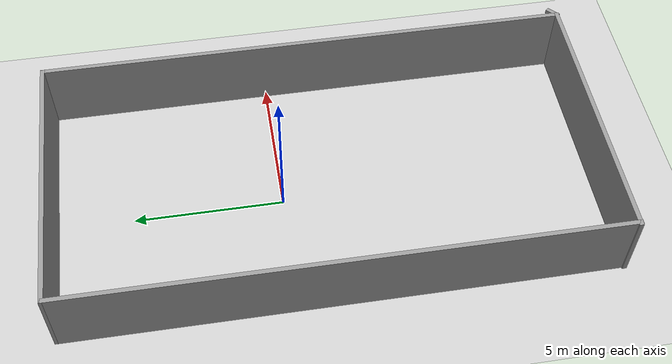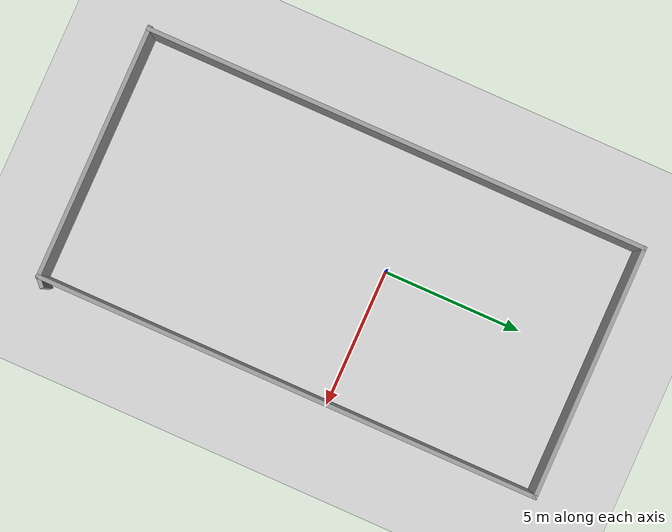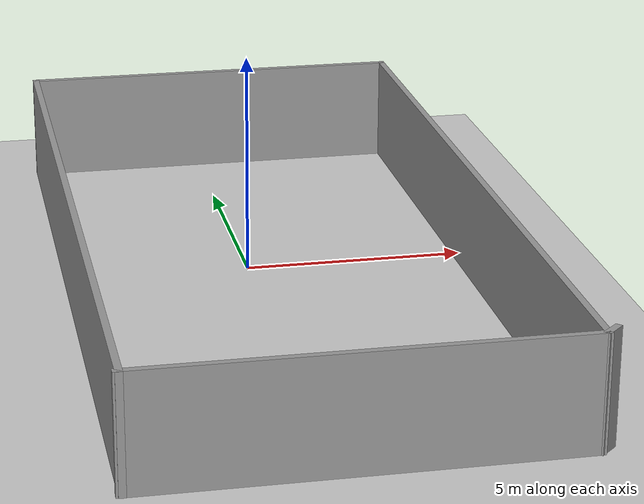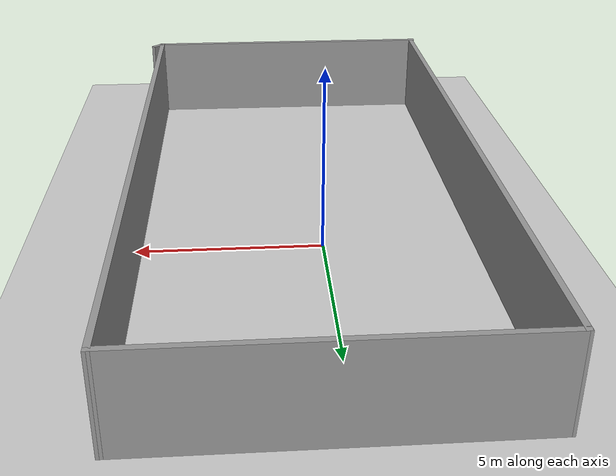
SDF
<sdf version="1.6">
 <world name="default">
  <light name="sun" type="directional">
   <pose>0 0 10 0 -0 0</pose>
   <diffuse>0.8 0.8 0.8 1</diffuse>
   <specular>0.2 0.2 0.2 1</specular>
   <attenuation>
    <range>1000</range>
    <constant>0.9</constant>
    <linear>0.01</linear>
    <quadratic>0.001</quadratic>
   </attenuation>
   <direction>-0.5 0.1 -0.9</direction>
  </light>
  <model name="ground_plane">
   <static>1</static>
   <link name="link">
    <collision name="collision">
     <geometry><plane><normal>0 0 1</normal><size>100 100</size></plane></geometry>
     <surface>
      <contact><collide_bitmask>65535</collide_bitmask></contact>
      <friction><ode><mu>100</mu><mu2>50</mu2></ode></friction>
     </surface>
    </collision>
    <visual name="visual">
     <cast_shadows>0</cast_shadows>
     <geometry><plane><normal>0 0 1</normal><size>100 100</size></plane></geometry>
     <material>
      <script><uri>file://media/materials/scripts/gazebo.material</uri><name>Gazebo/Grey</name></script>
     </material>
    </visual>
   </link>
  </model>
  <gravity>0 0 -9.8</gravity>
  <magnetic_field>6e-06 2.3e-05 -4.2e-05</magnetic_field>
  <atmosphere type="adiabatic"/>
  <physics name="default_physics" default="0" type="ode">
   <max_step_size>0.001</max_step_size>
   <real_time_factor>1</real_time_factor>
   <real_time_update_rate>1000</real_time_update_rate>
  </physics>
  <scene><ambient>0.4 0.4 0.4 1</ambient><background>0.7 0.7 0.7 1</background><shadows>1</shadows></scene>
  <spherical_coordinates>
   <surface_model>EARTH_WGS84</surface_model>
   <latitude_deg>0</latitude_deg>
   <longitude_deg>0</longitude_deg>
   <elevation>0</elevation>
   <heading_deg>0</heading_deg>
  </spherical_coordinates>
  <model name="big_rect">
   <pose>0.487787 -1.50097 0 0 -0 0</pose>
   <link name="Wall_1">
    <collision name="Wall_1_Collision">
     <geometry><box><size>18.25 0.15 2.5</size></box></geometry>
     <pose>0 0 1.25 0 -0 0</pose>
    </collision>
    <visual name="Wall_1_Visual">
     <pose>0 0 1.25 0 -0 0</pose>
     <geometry><box><size>18.25 0.15 2.5</size></box></geometry>
     <material>
      <script><uri>file://media/materials/scripts/gazebo.material</uri><name>Gazebo/Grey</name></script>
      <ambient>1 1 1 1</ambient>
     </material>
     <meta><layer>0</layer></meta>
    </visual>
    <pose>-4.64193 0.006233 0 0 -0 -1.5708</pose>
   </link>
   <link name="Wall_3">
    <collision name="Wall_3_Collision">
     <geometry><box><size>18.25 0.15 2.5</size></box></geometry>
     <pose>0 0 1.25 0 -0 0</pose>
    </collision>
    <visual name="Wall_3_Visual">
     <pose>0 0 1.25 0 -0 0</pose>
     <geometry><box><size>18.25 0.15 2.5</size></box></geometry>
     <material>
      <script><uri>file://media/materials/scripts/gazebo.material</uri><name>Gazebo/Grey</name></script>
      <ambient>1 1 1 1</ambient>
     </material>
     <meta><layer>0</layer></meta>
    </visual>
    <pose>4.41229 0.015462 0 0 -0 1.5708</pose>
   </link>
   <link name="Wall_6">
    <collision name="Wall_6_Collision">
     <geometry><box><size>9.20422 0.15 2.5</size></box></geometry>
     <pose>0 0 1.25 0 -0 0</pose>
    </collision>
    <visual name="Wall_6_Visual">
     <pose>0 0 1.25 0 -0 0</pose>
     <geometry><box><size>9.20422 0.15 2.5</size></box></geometry>
     <material>
      <script><uri>file://media/materials/scripts/gazebo.material</uri><name>Gazebo/Grey</name></script>
      <ambient>1 1 1 1</ambient>
     </material>
     <meta><layer>0</layer></meta>
    </visual>
    <pose>-0.114822 9.06085 0 0 -0 0.001019</pose>
   </link>
   <link name="Wall_8">
    <collision name="Wall_8_Collision">
     <geometry><box><size>0.484149 0.15 2.5</size></box></geometry>
     <pose>0 0 1.25 0 -0 0</pose>
    </collision>
    <visual name="Wall_8_Visual">
     <pose>0 0 1.25 0 -0 0</pose>
     <geometry><box><size>0.484149 0.15 2.5</size></box></geometry>
     <material>
      <script><uri>file://media/materials/scripts/gazebo.material</uri><name>Gazebo/Grey</name></script>
      <ambient>1 1 1 1</ambient>
     </material>
     <meta><layer>0</layer></meta>
    </visual>
    <pose>4.5345 -8.92062 0 0 -0 -2.3913</pose>
   </link>
   <link name="Wall_9">
    <collision name="Wall_9_Collision">
     <geometry><box><size>9.25 0.15 2.5</size></box></geometry>
     <pose>0 0 1.25 0 -0 0</pose>
    </collision>
    <visual name="Wall_9_Visual">
     <pose>0 0 1.25 0 -0 0</pose>
     <geometry><box><size>9.25 0.15 2.5</size></box></geometry>
     <material>
      <script><uri>file://media/materials/scripts/gazebo.material</uri><name>Gazebo/Grey</name></script>
      <ambient>1 1 1 1</ambient>
     </material>
     <meta><layer>0</layer></meta>
    </visual>
    <pose>-0.137713 -9.03454 0 0 -0 3.14159</pose>
   </link>
   <static>1</static>
  </model>
 </world>
</sdf>
